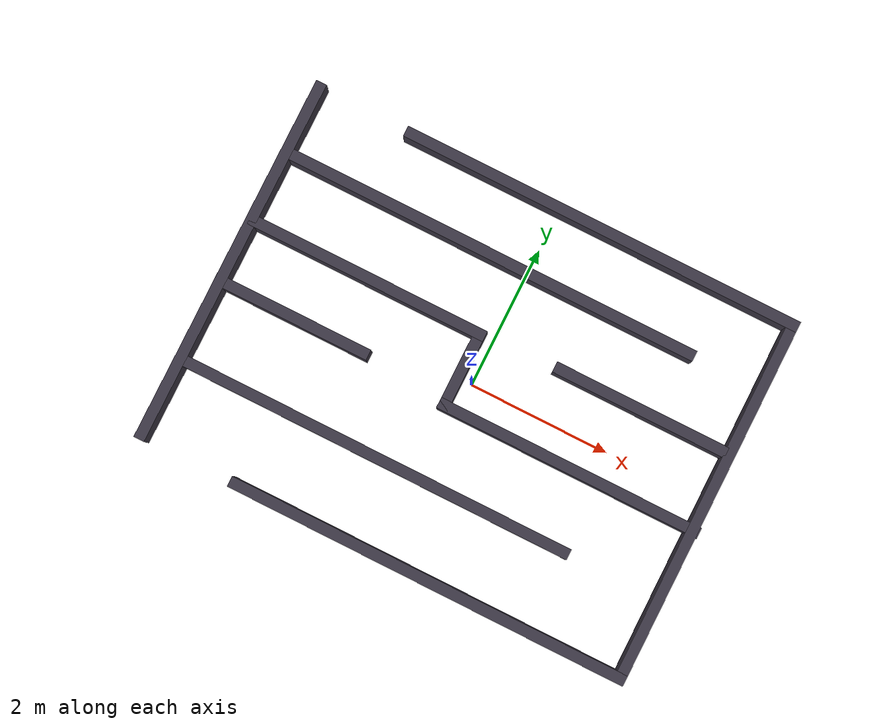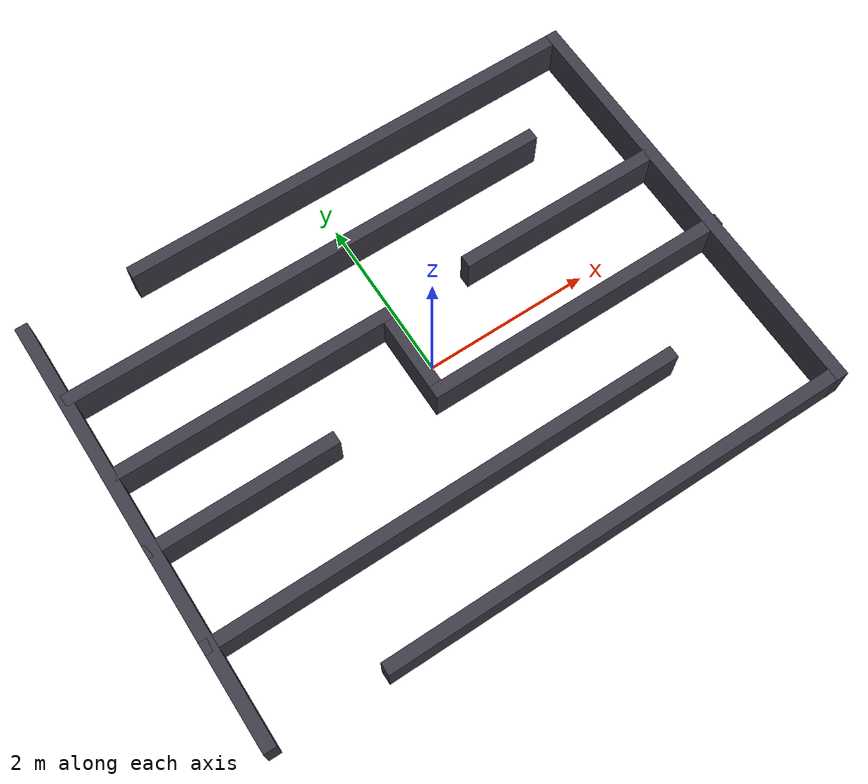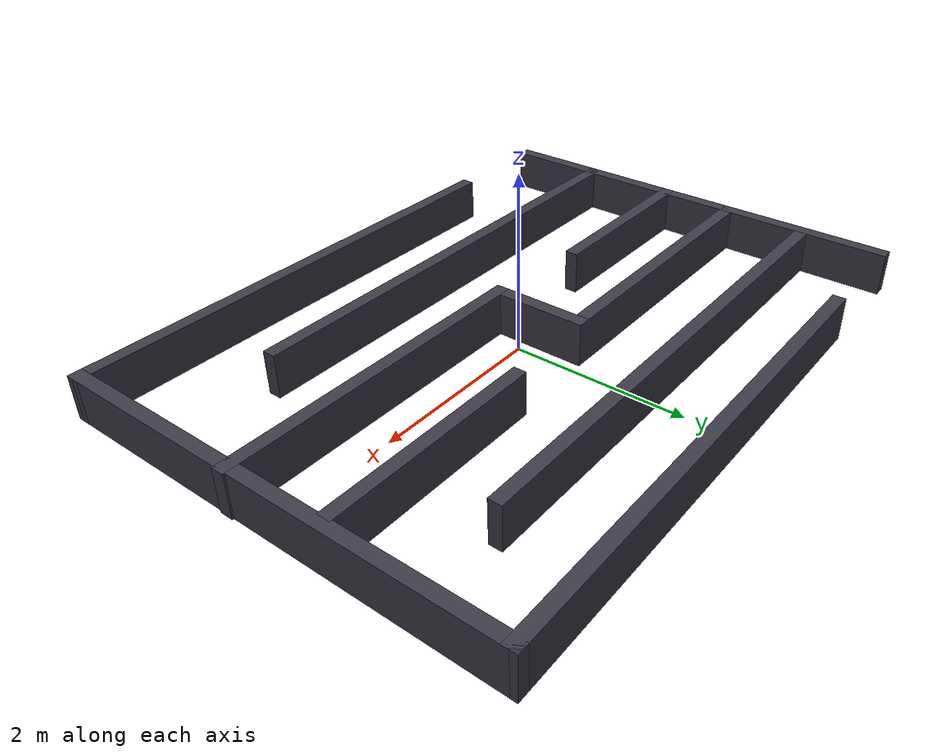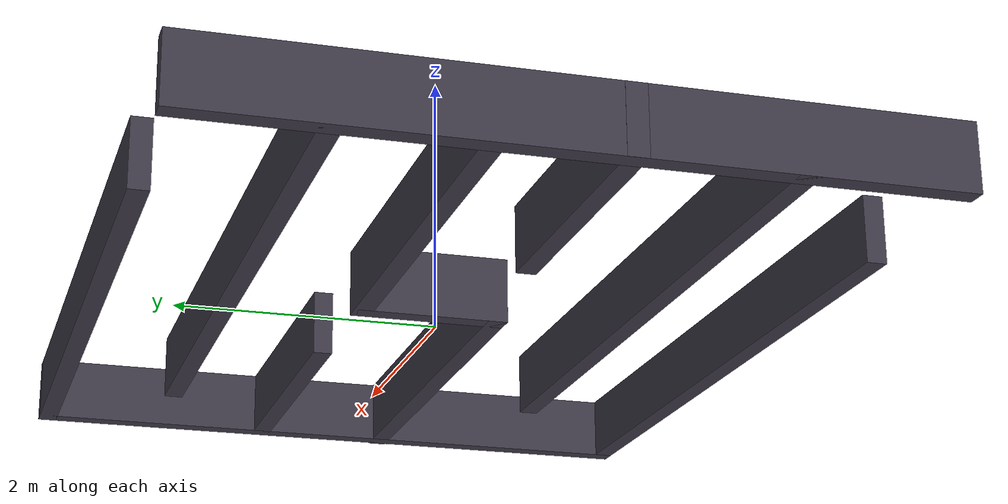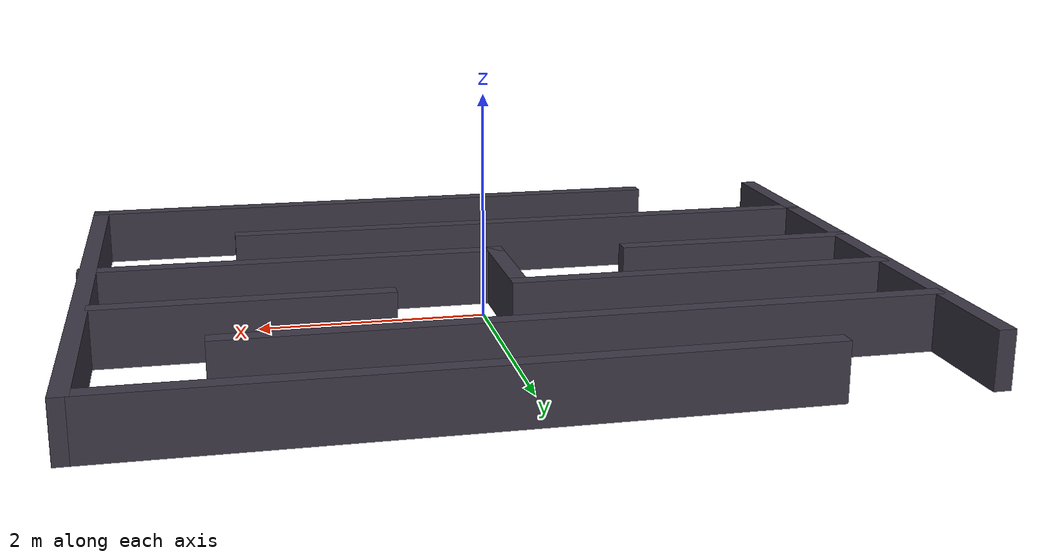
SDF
<?xml version='1.0'?>
<sdf version='1.7'>
  <model name='labirinto_novo'>
    <pose>-0.045035 0.006 0 0 -0 0</pose>
    <link name='Wall_20'>
      <collision name='Wall_20_Collision'>
        <geometry>
          <box>
            <size>5.25 0.15 0.5</size>
          </box>
        </geometry>
        <pose>0 0 0.25 0 -0 0</pose>
      </collision>
      <visual name='Wall_20_Visual'>
        <pose>0 0 0.25 0 -0 0</pose>
        <geometry>
          <box>
            <size>5.25 0.15 0.5</size>
          </box>
        </geometry>
        <material>
          <script>
            <uri>file://media/materials/scripts/gazebo.material</uri>
            <name>Gazebo/Grey</name>
          </script>
          <ambient>0.239216 0.219608 0.27451 1</ambient>
        </material>
        <meta>
          <layer>0</layer>
        </meta>
      </visual>
      <pose>-3.49296 0.014 0 0 -0 -1.5708</pose>
    </link>
    <link name='Wall_21'>
      <collision name='Wall_21_Collision'>
        <geometry>
          <box>
            <size>5.75 0.15 0.5</size>
          </box>
        </geometry>
        <pose>0 0 0.25 0 -0 0</pose>
      </collision>
      <visual name='Wall_21_Visual'>
        <pose>0 0 0.25 0 -0 0</pose>
        <geometry>
          <box>
            <size>5.75 0.15 0.5</size>
          </box>
        </geometry>
        <material>
          <script>
            <uri>file://media/materials/scripts/gazebo.material</uri>
            <name>Gazebo/Grey</name>
          </script>
          <ambient>0.239216 0.219608 0.27451 1</ambient>
        </material>
        <meta>
          <layer>0</layer>
        </meta>
      </visual>
      <pose>-0.691965 -1.433 0 0 -0 0</pose>
    </link>
    <link name='Wall_23'>
      <collision name='Wall_23_Collision'>
        <geometry>
          <box>
            <size>6 0.15 0.5</size>
          </box>
        </geometry>
        <pose>0 0 0.25 0 -0 0</pose>
      </collision>
      <visual name='Wall_23_Visual'>
        <pose>0 0 0.25 0 -0 0</pose>
        <geometry>
          <box>
            <size>6 0.15 0.5</size>
          </box>
        </geometry>
        <material>
          <script>
            <uri>file://media/materials/scripts/gazebo.material</uri>
            <name>Gazebo/Grey</name>
          </script>
          <ambient>0.239216 0.219608 0.27451 1</ambient>
        </material>
        <meta>
          <layer>0</layer>
        </meta>
      </visual>
      <pose>-0.508965 1.614 0 0 -0 3.14159</pose>
    </link>
    <link name='Wall_26'>
      <collision name='Wall_26_Collision'>
        <geometry>
          <box>
            <size>5.75 0.15 0.5</size>
          </box>
        </geometry>
        <pose>0 0 0.25 0 -0 0</pose>
      </collision>
      <visual name='Wall_26_Visual'>
        <pose>0 0 0.25 0 -0 0</pose>
        <geometry>
          <box>
            <size>5.75 0.15 0.5</size>
          </box>
        </geometry>
        <material>
          <script>
            <uri>file://media/materials/scripts/gazebo.material</uri>
            <name>Gazebo/Grey</name>
          </script>
          <ambient>0.239216 0.219608 0.27451 1</ambient>
        </material>
        <meta>
          <layer>0</layer>
        </meta>
      </visual>
      <pose>0.658035 2.565 0 0 -0 3.14159</pose>
    </link>
    <link name='Wall_28'>
      <collision name='Wall_28_Collision'>
        <geometry>
          <box>
            <size>3.44791 0.15 0.5</size>
          </box>
        </geometry>
        <pose>0 0 0.25 0 -0 0</pose>
      </collision>
      <visual name='Wall_28_Visual'>
        <pose>0 0 0.25 0 -0 0</pose>
        <geometry>
          <box>
            <size>3.44791 0.15 0.5</size>
          </box>
        </geometry>
        <material>
          <script>
            <uri>file://media/materials/scripts/gazebo.material</uri>
            <name>Gazebo/Grey</name>
          </script>
          <ambient>0.239216 0.219608 0.27451 1</ambient>
        </material>
        <meta>
          <layer>0</layer>
        </meta>
      </visual>
      <pose>-1.79397 0.613 0 0 -0 0</pose>
    </link>
    <link name='Wall_29'>
      <collision name='Wall_29_Collision'>
        <geometry>
          <box>
            <size>1.18515 0.15 0.5</size>
          </box>
        </geometry>
        <pose>0 0 0.25 0 -0 0</pose>
      </collision>
      <visual name='Wall_29_Visual'>
        <pose>0 0 0.25 0 -0 0</pose>
        <geometry>
          <box>
            <size>1.18515 0.15 0.5</size>
          </box>
        </geometry>
        <material>
          <script>
            <uri>file://media/materials/scripts/gazebo.material</uri>
            <name>Gazebo/Grey</name>
          </script>
          <ambient>0.239216 0.219608 0.27451 1</ambient>
        </material>
        <meta>
          <layer>0</layer>
        </meta>
      </visual>
      <pose>-0.144965 0.095 0 0 -0 -1.5708</pose>
    </link>
    <link name='Wall_30'>
      <collision name='Wall_30_Collision'>
        <geometry>
          <box>
            <size>3.78886 0.15 0.5</size>
          </box>
        </geometry>
        <pose>0 0 0.25 0 -0 0</pose>
      </collision>
      <visual name='Wall_30_Visual'>
        <pose>0 0 0.25 0 -0 0</pose>
        <geometry>
          <box>
            <size>3.78886 0.15 0.5</size>
          </box>
        </geometry>
        <material>
          <script>
            <uri>file://media/materials/scripts/gazebo.material</uri>
            <name>Gazebo/Grey</name>
          </script>
          <ambient>0.239216 0.219608 0.27451 1</ambient>
        </material>
        <meta>
          <layer>0</layer>
        </meta>
      </visual>
      <pose>1.67454 -0.423 0 0 -0 0</pose>
    </link>
    <link name='Wall_32'>
      <collision name='Wall_32_Collision'>
        <geometry>
          <box>
            <size>2.25 0.15 0.5</size>
          </box>
        </geometry>
        <pose>0 0 0.25 0 -0 0</pose>
      </collision>
      <visual name='Wall_32_Visual'>
        <pose>0 0 0.25 0 -0 0</pose>
        <geometry>
          <box>
            <size>2.25 0.15 0.5</size>
          </box>
        </geometry>
        <material>
          <script>
            <uri>file://media/materials/scripts/gazebo.material</uri>
            <name>Gazebo/Grey</name>
          </script>
          <ambient>0.239216 0.219608 0.27451 1</ambient>
        </material>
        <meta>
          <layer>0</layer>
        </meta>
      </visual>
      <pose>-2.44396 -0.287 0 0 -0 3.14159</pose>
    </link>
    <link name='Wall_34'>
      <collision name='Wall_34_Collision'>
        <geometry>
          <box>
            <size>2.5 0.15 0.5</size>
          </box>
        </geometry>
        <pose>0 0 0.25 0 -0 0</pose>
      </collision>
      <visual name='Wall_34_Visual'>
        <pose>0 0 0.25 0 -0 0</pose>
        <geometry>
          <box>
            <size>2.5 0.15 0.5</size>
          </box>
        </geometry>
        <material>
          <script>
            <uri>file://media/materials/scripts/gazebo.material</uri>
            <name>Gazebo/Grey</name>
          </script>
          <ambient>0.239216 0.219608 0.27451 1</ambient>
        </material>
        <meta>
          <layer>0</layer>
        </meta>
      </visual>
      <pose>2.17103 0.673 0 0 -0 0</pose>
    </link>
    <link name='Wall_17'>
      <collision name='Wall_17_Collision'>
        <geometry>
          <box>
            <size>5.28062 0.15 0.5</size>
          </box>
        </geometry>
        <pose>0 0 0.25 0 -0 0</pose>
      </collision>
      <visual name='Wall_17_Visual'>
        <pose>0 0 0.25 0 -0 0</pose>
        <geometry>
          <box>
            <size>5.28062 0.15 0.5</size>
          </box>
        </geometry>
        <material>
          <script>
            <uri>file://media/materials/scripts/gazebo.material</uri>
            <name>Gazebo/Grey</name>
          </script>
          <ambient>0.239216 0.219608 0.27451 1</ambient>
        </material>
        <meta>
          <layer>0</layer>
        </meta>
      </visual>
      <pose>3.47303 -0 0 0 -0 -1.56495</pose>
    </link>
    <link name='Wall_19'>
      <collision name='Wall_19_Collision'>
        <geometry>
          <box>
            <size>5.75 0.15 0.5</size>
          </box>
        </geometry>
        <pose>0 0 0.25 0 -0 0</pose>
      </collision>
      <visual name='Wall_19_Visual'>
        <pose>0 0 0.25 0 -0 0</pose>
        <geometry>
          <box>
            <size>5.75 0.15 0.5</size>
          </box>
        </geometry>
        <material>
          <script>
            <uri>file://media/materials/scripts/gazebo.material</uri>
            <name>Gazebo/Grey</name>
          </script>
          <ambient>0.239216 0.219608 0.27451 1</ambient>
        </material>
        <meta>
          <layer>0</layer>
        </meta>
      </visual>
      <pose>0.688035 -2.565 0 0 -0 3.14159</pose>
    </link>
    <static>1</static>
  </model>
</sdf>
